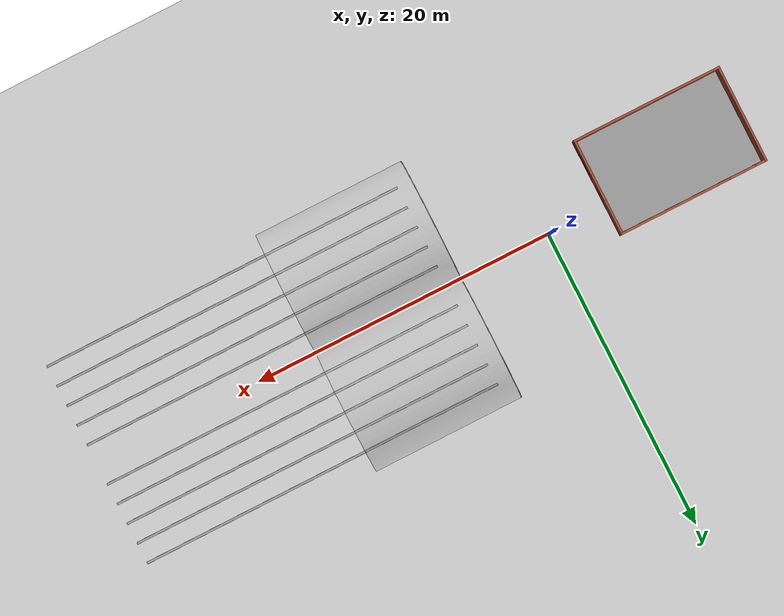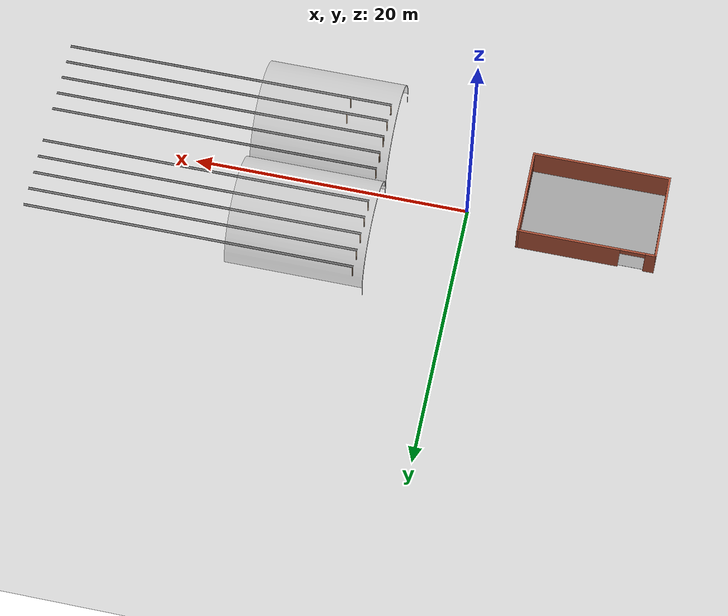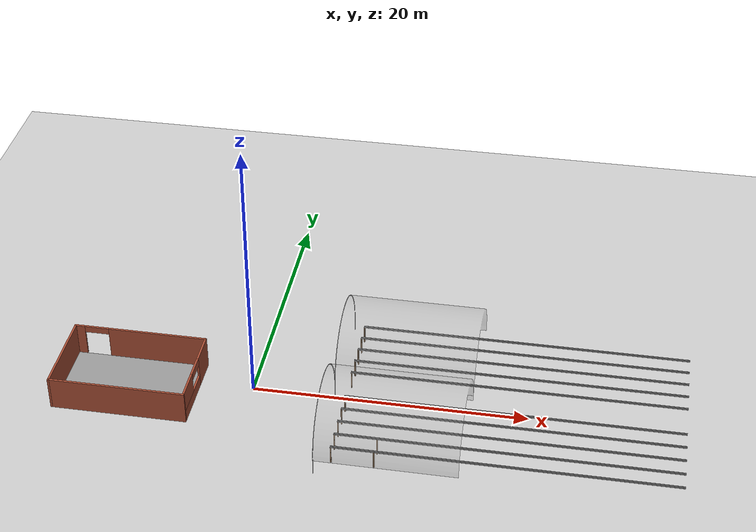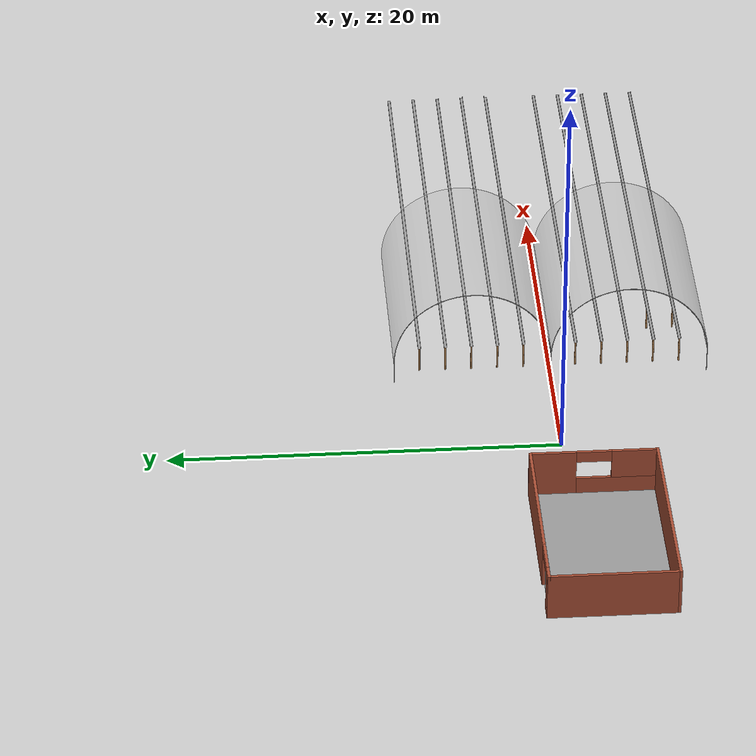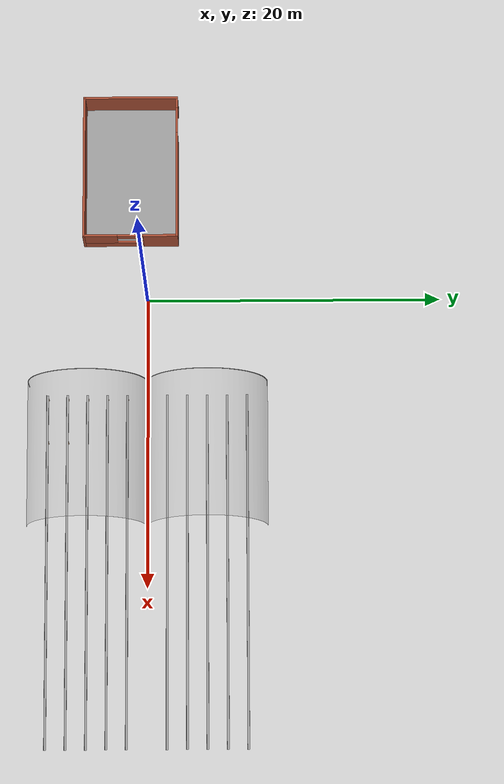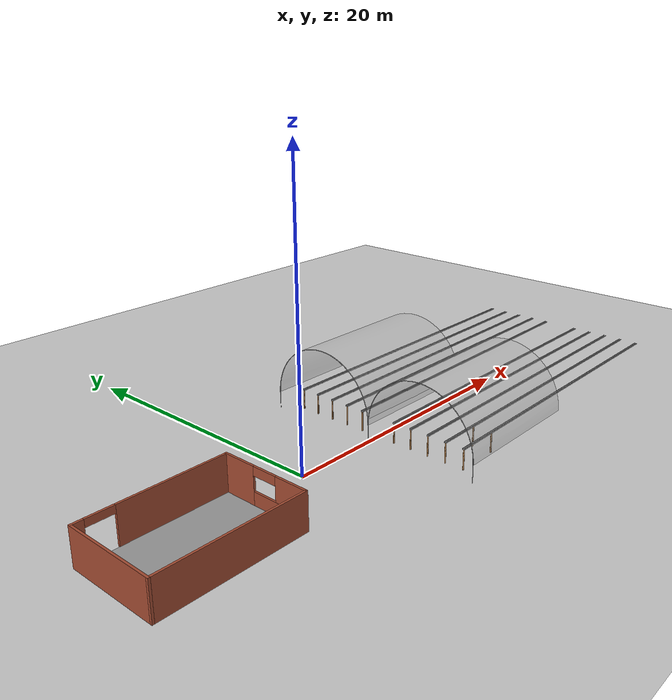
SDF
<sdf version="1.4">
 <world name="default">
  <model name="pole_0">
   <static>1</static>
   <pose>7.000 -6.750 0.691 0.0 0.0 0.0</pose>
   <link name="link">
    <collision name="collision">
     <geometry><cylinder><length>1.38235</length><radius>0.0456111</radius></cylinder></geometry>
    </collision>
    <visual name="visual">
     <geometry><cylinder><length>1.38235</length><radius>0.0456111</radius></cylinder></geometry>
     <material>
      <script><uri>file://media/materials/scripts/gazebo.material</uri><name>Gazebo/WoodFloor</name></script>
      <shader type="vertex"><normal_map>__default__</normal_map></shader>
      <emissive>0 0 0 1</emissive>
      <specular>0.01 0.01 0.01 1</specular>
      <ambient>0.9 0.9 0.9 1</ambient>
      <diffuse>0.09 0.09 0.09 1</diffuse>
     </material>
    </visual>
   </link>
  </model>
  <model name="pole_1">
   <static>1</static>
   <pose>7.000 -5.400 0.691 0.0 0.0 0.0</pose>
   <link name="link">
    <collision name="collision">
     <geometry><cylinder><length>1.38235</length><radius>0.0456111</radius></cylinder></geometry>
    </collision>
    <visual name="visual">
     <geometry><cylinder><length>1.38235</length><radius>0.0456111</radius></cylinder></geometry>
     <material>
      <script><uri>file://media/materials/scripts/gazebo.material</uri><name>Gazebo/WoodFloor</name></script>
      <shader type="vertex"><normal_map>__default__</normal_map></shader>
      <emissive>0 0 0 1</emissive>
      <specular>0.01 0.01 0.01 1</specular>
      <ambient>0.9 0.9 0.9 1</ambient>
      <diffuse>0.09 0.09 0.09 1</diffuse>
     </material>
    </visual>
   </link>
  </model>
  <model name="pole_2">
   <static>1</static>
   <pose>7.000 -4.050 0.691 0.0 0.0 0.0</pose>
   <link name="link">
    <collision name="collision">
     <geometry><cylinder><length>1.38235</length><radius>0.0456111</radius></cylinder></geometry>
    </collision>
    <visual name="visual">
     <geometry><cylinder><length>1.38235</length><radius>0.0456111</radius></cylinder></geometry>
     <material>
      <script><uri>file://media/materials/scripts/gazebo.material</uri><name>Gazebo/WoodFloor</name></script>
      <shader type="vertex"><normal_map>__default__</normal_map></shader>
      <emissive>0 0 0 1</emissive>
      <specular>0.01 0.01 0.01 1</specular>
      <ambient>0.9 0.9 0.9 1</ambient>
      <diffuse>0.09 0.09 0.09 1</diffuse>
     </material>
    </visual>
   </link>
  </model>
  <model name="pole_3">
   <static>1</static>
   <pose>7.000 -2.700 0.691 0.0 0.0 0.0</pose>
   <link name="link">
    <collision name="collision">
     <geometry><cylinder><length>1.38235</length><radius>0.0456111</radius></cylinder></geometry>
    </collision>
    <visual name="visual">
     <geometry><cylinder><length>1.38235</length><radius>0.0456111</radius></cylinder></geometry>
     <material>
      <script><uri>file://media/materials/scripts/gazebo.material</uri><name>Gazebo/WoodFloor</name></script>
      <shader type="vertex"><normal_map>__default__</normal_map></shader>
      <emissive>0 0 0 1</emissive>
      <specular>0.01 0.01 0.01 1</specular>
      <ambient>0.9 0.9 0.9 1</ambient>
      <diffuse>0.09 0.09 0.09 1</diffuse>
     </material>
    </visual>
   </link>
  </model>
  <model name="pole_4">
   <static>1</static>
   <pose>7.000 -1.350 0.691 0.0 0.0 0.0</pose>
   <link name="link">
    <collision name="collision">
     <geometry><cylinder><length>1.38235</length><radius>0.0456111</radius></cylinder></geometry>
    </collision>
    <visual name="visual">
     <geometry><cylinder><length>1.38235</length><radius>0.0456111</radius></cylinder></geometry>
     <material>
      <script><uri>file://media/materials/scripts/gazebo.material</uri><name>Gazebo/WoodFloor</name></script>
      <shader type="vertex"><normal_map>__default__</normal_map></shader>
      <emissive>0 0 0 1</emissive>
      <specular>0.01 0.01 0.01 1</specular>
      <ambient>0.9 0.9 0.9 1</ambient>
      <diffuse>0.09 0.09 0.09 1</diffuse>
     </material>
    </visual>
   </link>
  </model>
  <model name="pole_5">
   <static>1</static>
   <pose>10.000 -6.750 0.691 0.0 0.0 0.0</pose>
   <link name="link">
    <collision name="collision">
     <geometry><cylinder><length>1.38235</length><radius>0.0456111</radius></cylinder></geometry>
    </collision>
    <visual name="visual">
     <geometry><cylinder><length>1.38235</length><radius>0.0456111</radius></cylinder></geometry>
     <material>
      <script><uri>file://media/materials/scripts/gazebo.material</uri><name>Gazebo/WoodFloor</name></script>
      <shader type="vertex"><normal_map>__default__</normal_map></shader>
      <emissive>0 0 0 1</emissive>
      <specular>0.01 0.01 0.01 1</specular>
      <ambient>0.9 0.9 0.9 1</ambient>
      <diffuse>0.09 0.09 0.09 1</diffuse>
     </material>
    </visual>
   </link>
  </model>
  <model name="pole_6">
   <static>1</static>
   <pose>10.000 -5.400 0.691 0.0 0.0 0.0</pose>
   <link name="link">
    <collision name="collision">
     <geometry><cylinder><length>1.38235</length><radius>0.0456111</radius></cylinder></geometry>
    </collision>
    <visual name="visual">
     <geometry><cylinder><length>1.38235</length><radius>0.0456111</radius></cylinder></geometry>
     <material>
      <script><uri>file://media/materials/scripts/gazebo.material</uri><name>Gazebo/WoodFloor</name></script>
      <shader type="vertex"><normal_map>__default__</normal_map></shader>
      <emissive>0 0 0 1</emissive>
      <specular>0.01 0.01 0.01 1</specular>
      <ambient>0.9 0.9 0.9 1</ambient>
      <diffuse>0.09 0.09 0.09 1</diffuse>
     </material>
    </visual>
   </link>
  </model>
  <model name="tray_0">
   <static>1</static>
   <link name="link_0">
    <collision name="collision"><geometry><box><size>24.100 0.15 0.005</size></box></geometry></collision>
    <visual name="visual">
     <geometry><box><size>24.100 0.15 0.005</size></box></geometry>
     <material>
      <script><uri>file://media/materials/scripts/gazebo.material</uri><name>Gazebo/Grey</name></script>
      <emissive>0 0 0 1</emissive>
      <shader type="vertex"><normal_map>__default__</normal_map></shader>
      <specular>0.01 0.01 0.01 1</specular>
      <lighting>1</lighting>
      <ambient>0.7 0.7 0.7 1</ambient>
      <diffuse>0.3 0.3 0.3 1</diffuse>
     </material>
    </visual>
    <pose>19.000 -6.750 1.382 0.0 0.0 0.0</pose>
   </link>
  </model>
  <model name="tray_1">
   <static>1</static>
   <link name="link_0">
    <collision name="collision"><geometry><box><size>24.100 0.15 0.005</size></box></geometry></collision>
    <visual name="visual">
     <geometry><box><size>24.100 0.15 0.005</size></box></geometry>
     <material>
      <script><uri>file://media/materials/scripts/gazebo.material</uri><name>Gazebo/Grey</name></script>
      <emissive>0 0 0 1</emissive>
      <shader type="vertex"><normal_map>__default__</normal_map></shader>
      <specular>0.01 0.01 0.01 1</specular>
      <lighting>1</lighting>
      <ambient>0.7 0.7 0.7 1</ambient>
      <diffuse>0.3 0.3 0.3 1</diffuse>
     </material>
    </visual>
    <pose>19.000 -5.400 1.382 0.0 0.0 0.0</pose>
   </link>
  </model>
  <model name="tray_2">
   <static>1</static>
   <link name="link_0">
    <collision name="collision"><geometry><box><size>24.100 0.15 0.005</size></box></geometry></collision>
    <visual name="visual">
     <geometry><box><size>24.100 0.15 0.005</size></box></geometry>
     <material>
      <script><uri>file://media/materials/scripts/gazebo.material</uri><name>Gazebo/Grey</name></script>
      <emissive>0 0 0 1</emissive>
      <shader type="vertex"><normal_map>__default__</normal_map></shader>
      <specular>0.01 0.01 0.01 1</specular>
      <lighting>1</lighting>
      <ambient>0.7 0.7 0.7 1</ambient>
      <diffuse>0.3 0.3 0.3 1</diffuse>
     </material>
    </visual>
    <pose>19.000 -4.050 1.382 0.0 0.0 0.0</pose>
   </link>
  </model>
  <model name="tray_3">
   <static>1</static>
   <link name="link_0">
    <collision name="collision"><geometry><box><size>24.100 0.15 0.005</size></box></geometry></collision>
    <visual name="visual">
     <geometry><box><size>24.100 0.15 0.005</size></box></geometry>
     <material>
      <script><uri>file://media/materials/scripts/gazebo.material</uri><name>Gazebo/Grey</name></script>
      <emissive>0 0 0 1</emissive>
      <shader type="vertex"><normal_map>__default__</normal_map></shader>
      <specular>0.01 0.01 0.01 1</specular>
      <lighting>1</lighting>
      <ambient>0.7 0.7 0.7 1</ambient>
      <diffuse>0.3 0.3 0.3 1</diffuse>
     </material>
    </visual>
    <pose>19.000 -2.700 1.382 0.0 0.0 0.0</pose>
   </link>
  </model>
  <model name="tray_4">
   <static>1</static>
   <link name="link_0">
    <collision name="collision"><geometry><box><size>24.100 0.15 0.005</size></box></geometry></collision>
    <visual name="visual">
     <geometry><box><size>24.100 0.15 0.005</size></box></geometry>
     <material>
      <script><uri>file://media/materials/scripts/gazebo.material</uri><name>Gazebo/Grey</name></script>
      <emissive>0 0 0 1</emissive>
      <shader type="vertex"><normal_map>__default__</normal_map></shader>
      <specular>0.01 0.01 0.01 1</specular>
      <lighting>1</lighting>
      <ambient>0.7 0.7 0.7 1</ambient>
      <diffuse>0.3 0.3 0.3 1</diffuse>
     </material>
    </visual>
    <pose>19.000 -1.350 1.382 0.0 0.0 0.0</pose>
   </link>
  </model>
  <model name="tray_p2_0">
   <static>1</static>
   <link name="link_0">
    <collision name="collision"><geometry><box><size>24.10 0.085 0.005</size></box></geometry></collision>
    <visual name="visual">
     <geometry><box><size>24.10 0.085 0.005</size></box></geometry>
     <material>
      <script><uri>file://media/materials/scripts/gazebo.material</uri><name>Gazebo/Grey</name></script>
      <emissive>0 0 0 1</emissive>
      <shader type="vertex"><normal_map>__default__</normal_map></shader>
      <specular>0.01 0.01 0.01 1</specular>
      <lighting>1</lighting>
      <ambient>0.7 0.7 0.7 1</ambient>
      <diffuse>0.3 0.3 0.3 1</diffuse>
     </material>
    </visual>
    <pose>19.000 -6.825 1.424 1.5707 0.0 0.0</pose>
   </link>
  </model>
  <model name="tray_p2_1">
   <static>1</static>
   <link name="link_0">
    <collision name="collision"><geometry><box><size>24.10 0.085 0.005</size></box></geometry></collision>
    <visual name="visual">
     <geometry><box><size>24.10 0.085 0.005</size></box></geometry>
     <material>
      <script><uri>file://media/materials/scripts/gazebo.material</uri><name>Gazebo/Grey</name></script>
      <emissive>0 0 0 1</emissive>
      <shader type="vertex"><normal_map>__default__</normal_map></shader>
      <specular>0.01 0.01 0.01 1</specular>
      <lighting>1</lighting>
      <ambient>0.7 0.7 0.7 1</ambient>
      <diffuse>0.3 0.3 0.3 1</diffuse>
     </material>
    </visual>
    <pose>19.000 -5.475 1.424 1.5707 0.0 0.0</pose>
   </link>
  </model>
  <model name="tray_p2_2">
   <static>1</static>
   <link name="link_0">
    <collision name="collision"><geometry><box><size>24.10 0.085 0.005</size></box></geometry></collision>
    <visual name="visual">
     <geometry><box><size>24.10 0.085 0.005</size></box></geometry>
     <material>
      <script><uri>file://media/materials/scripts/gazebo.material</uri><name>Gazebo/Grey</name></script>
      <emissive>0 0 0 1</emissive>
      <shader type="vertex"><normal_map>__default__</normal_map></shader>
      <specular>0.01 0.01 0.01 1</specular>
      <lighting>1</lighting>
      <ambient>0.7 0.7 0.7 1</ambient>
      <diffuse>0.3 0.3 0.3 1</diffuse>
     </material>
    </visual>
    <pose>19.000 -4.125 1.424 1.5707 0.0 0.0</pose>
   </link>
  </model>
  <model name="tray_p2_3">
   <static>1</static>
   <link name="link_0">
    <collision name="collision"><geometry><box><size>24.10 0.085 0.005</size></box></geometry></collision>
    <visual name="visual">
     <geometry><box><size>24.10 0.085 0.005</size></box></geometry>
     <material>
      <script><uri>file://media/materials/scripts/gazebo.material</uri><name>Gazebo/Grey</name></script>
      <emissive>0 0 0 1</emissive>
      <shader type="vertex"><normal_map>__default__</normal_map></shader>
      <specular>0.01 0.01 0.01 1</specular>
      <lighting>1</lighting>
      <ambient>0.7 0.7 0.7 1</ambient>
      <diffuse>0.3 0.3 0.3 1</diffuse>
     </material>
    </visual>
    <pose>19.000 -2.775 1.424 1.5707 0.0 0.0</pose>
   </link>
  </model>
  <model name="tray_p2_4">
   <static>1</static>
   <link name="link_0">
    <collision name="collision"><geometry><box><size>24.10 0.085 0.005</size></box></geometry></collision>
    <visual name="visual">
     <geometry><box><size>24.10 0.085 0.005</size></box></geometry>
     <material>
      <script><uri>file://media/materials/scripts/gazebo.material</uri><name>Gazebo/Grey</name></script>
      <emissive>0 0 0 1</emissive>
      <shader type="vertex"><normal_map>__default__</normal_map></shader>
      <specular>0.01 0.01 0.01 1</specular>
      <lighting>1</lighting>
      <ambient>0.7 0.7 0.7 1</ambient>
      <diffuse>0.3 0.3 0.3 1</diffuse>
     </material>
    </visual>
    <pose>19.000 -1.425 1.424 1.5707 0.0 0.0</pose>
   </link>
  </model>
  <model name="tray_p2_5">
   <static>1</static>
   <link name="link_0">
    <collision name="collision"><geometry><box><size>24.10 0.085 0.005</size></box></geometry></collision>
    <visual name="visual">
     <geometry><box><size>24.10 0.085 0.005</size></box></geometry>
     <material>
      <script><uri>file://media/materials/scripts/gazebo.material</uri><name>Gazebo/Grey</name></script>
      <emissive>0 0 0 1</emissive>
      <shader type="vertex"><normal_map>__default__</normal_map></shader>
      <specular>0.01 0.01 0.01 1</specular>
      <lighting>1</lighting>
      <ambient>0.7 0.7 0.7 1</ambient>
      <diffuse>0.3 0.3 0.3 1</diffuse>
     </material>
    </visual>
    <pose>19.000 -6.675 1.424 1.5707 0.0 0.0</pose>
   </link>
  </model>
  <model name="tray_p2_6">
   <static>1</static>
   <link name="link_0">
    <collision name="collision"><geometry><box><size>24.10 0.085 0.005</size></box></geometry></collision>
    <visual name="visual">
     <geometry><box><size>24.10 0.085 0.005</size></box></geometry>
     <material>
      <script><uri>file://media/materials/scripts/gazebo.material</uri><name>Gazebo/Grey</name></script>
      <emissive>0 0 0 1</emissive>
      <shader type="vertex"><normal_map>__default__</normal_map></shader>
      <specular>0.01 0.01 0.01 1</specular>
      <lighting>1</lighting>
      <ambient>0.7 0.7 0.7 1</ambient>
      <diffuse>0.3 0.3 0.3 1</diffuse>
     </material>
    </visual>
    <pose>19.000 -5.325 1.424 1.5707 0.0 0.0</pose>
   </link>
  </model>
  <model name="tray_p2_7">
   <static>1</static>
   <link name="link_0">
    <collision name="collision"><geometry><box><size>24.10 0.085 0.005</size></box></geometry></collision>
    <visual name="visual">
     <geometry><box><size>24.10 0.085 0.005</size></box></geometry>
     <material>
      <script><uri>file://media/materials/scripts/gazebo.material</uri><name>Gazebo/Grey</name></script>
      <emissive>0 0 0 1</emissive>
      <shader type="vertex"><normal_map>__default__</normal_map></shader>
      <specular>0.01 0.01 0.01 1</specular>
      <lighting>1</lighting>
      <ambient>0.7 0.7 0.7 1</ambient>
      <diffuse>0.3 0.3 0.3 1</diffuse>
     </material>
    </visual>
    <pose>19.000 -3.975 1.424 1.5707 0.0 0.0</pose>
   </link>
  </model>
  <model name="tray_p2_8">
   <static>1</static>
   <link name="link_0">
    <collision name="collision"><geometry><box><size>24.10 0.085 0.005</size></box></geometry></collision>
    <visual name="visual">
     <geometry><box><size>24.10 0.085 0.005</size></box></geometry>
     <material>
      <script><uri>file://media/materials/scripts/gazebo.material</uri><name>Gazebo/Grey</name></script>
      <emissive>0 0 0 1</emissive>
      <shader type="vertex"><normal_map>__default__</normal_map></shader>
      <specular>0.01 0.01 0.01 1</specular>
      <lighting>1</lighting>
      <ambient>0.7 0.7 0.7 1</ambient>
      <diffuse>0.3 0.3 0.3 1</diffuse>
     </material>
    </visual>
    <pose>19.000 -2.625 1.424 1.5707 0.0 0.0</pose>
   </link>
  </model>
  <model name="tray_p2_9">
   <static>1</static>
   <link name="link_0">
    <collision name="collision"><geometry><box><size>24.10 0.085 0.005</size></box></geometry></collision>
    <visual name="visual">
     <geometry><box><size>24.10 0.085 0.005</size></box></geometry>
     <material>
      <script><uri>file://media/materials/scripts/gazebo.material</uri><name>Gazebo/Grey</name></script>
      <emissive>0 0 0 1</emissive>
      <shader type="vertex"><normal_map>__default__</normal_map></shader>
      <specular>0.01 0.01 0.01 1</specular>
      <lighting>1</lighting>
      <ambient>0.7 0.7 0.7 1</ambient>
      <diffuse>0.3 0.3 0.3 1</diffuse>
     </material>
    </visual>
    <pose>19.000 -1.275 1.424 1.5707 0.0 0.0</pose>
   </link>
  </model>
  <model name="dummy_arch_0">
   <static>1</static>
   <pose>6.000 -8.100 0.0 1.5707 0.0 1.5707</pose>
   <link name="link">
    <collision name="collision">
     <geometry><mesh><uri>model://dummy_arch/dummy_arch.stl</uri></mesh></geometry>
    </collision>
    <visual name="visual">
     <geometry><mesh><uri>model://dummy_arch/dummy_arch.stl</uri></mesh></geometry>
     <material>
      <script><uri>file://media/materials/scripts/gazebo.material</uri><name>Gazebo/Grey</name></script>
     </material>
    </visual>
   </link>
  </model>
  <model name="canopy10m_0">
   <static>1</static>
   <pose>6.000 -4.033 0.0 1.5707 0.0 1.5707</pose>
   <link name="link">
    <collision name="collision">
     <geometry><mesh><uri>model://canopy10m/Canopy10m.stl</uri></mesh></geometry>
    </collision>
    <visual name="visual">
     <geometry><mesh><uri>model://canopy10m/Canopy10m.stl</uri></mesh></geometry>
     <transparency>0.65</transparency>
    </visual>
   </link>
  </model>
  <model name="pole_45">
   <static>1</static>
   <pose>7.000 1.350 0.691 0.0 0.0 0.0</pose>
   <link name="link">
    <collision name="collision">
     <geometry><cylinder><length>1.38235</length><radius>0.0456111</radius></cylinder></geometry>
    </collision>
    <visual name="visual">
     <geometry><cylinder><length>1.38235</length><radius>0.0456111</radius></cylinder></geometry>
     <material>
      <script><uri>file://media/materials/scripts/gazebo.material</uri><name>Gazebo/WoodFloor</name></script>
      <shader type="vertex"><normal_map>__default__</normal_map></shader>
      <emissive>0 0 0 1</emissive>
      <specular>0.01 0.01 0.01 1</specular>
      <ambient>0.9 0.9 0.9 1</ambient>
      <diffuse>0.09 0.09 0.09 1</diffuse>
     </material>
    </visual>
   </link>
  </model>
  <model name="pole_46">
   <static>1</static>
   <pose>7.000 2.700 0.691 0.0 0.0 0.0</pose>
   <link name="link">
    <collision name="collision">
     <geometry><cylinder><length>1.38235</length><radius>0.0456111</radius></cylinder></geometry>
    </collision>
    <visual name="visual">
     <geometry><cylinder><length>1.38235</length><radius>0.0456111</radius></cylinder></geometry>
     <material>
      <script><uri>file://media/materials/scripts/gazebo.material</uri><name>Gazebo/WoodFloor</name></script>
      <shader type="vertex"><normal_map>__default__</normal_map></shader>
      <emissive>0 0 0 1</emissive>
      <specular>0.01 0.01 0.01 1</specular>
      <ambient>0.9 0.9 0.9 1</ambient>
      <diffuse>0.09 0.09 0.09 1</diffuse>
     </material>
    </visual>
   </link>
  </model>
  <model name="pole_47">
   <static>1</static>
   <pose>7.000 4.050 0.691 0.0 0.0 0.0</pose>
   <link name="link">
    <collision name="collision">
     <geometry><cylinder><length>1.38235</length><radius>0.0456111</radius></cylinder></geometry>
    </collision>
    <visual name="visual">
     <geometry><cylinder><length>1.38235</length><radius>0.0456111</radius></cylinder></geometry>
     <material>
      <script><uri>file://media/materials/scripts/gazebo.material</uri><name>Gazebo/WoodFloor</name></script>
      <shader type="vertex"><normal_map>__default__</normal_map></shader>
      <emissive>0 0 0 1</emissive>
      <specular>0.01 0.01 0.01 1</specular>
      <ambient>0.9 0.9 0.9 1</ambient>
      <diffuse>0.09 0.09 0.09 1</diffuse>
     </material>
    </visual>
   </link>
  </model>
  <model name="pole_48">
   <static>1</static>
   <pose>7.000 5.400 0.691 0.0 0.0 0.0</pose>
   <link name="link">
    <collision name="collision">
     <geometry><cylinder><length>1.38235</length><radius>0.0456111</radius></cylinder></geometry>
    </collision>
    <visual name="visual">
     <geometry><cylinder><length>1.38235</length><radius>0.0456111</radius></cylinder></geometry>
     <material>
      <script><uri>file://media/materials/scripts/gazebo.material</uri><name>Gazebo/WoodFloor</name></script>
      <shader type="vertex"><normal_map>__default__</normal_map></shader>
      <emissive>0 0 0 1</emissive>
      <specular>0.01 0.01 0.01 1</specular>
      <ambient>0.9 0.9 0.9 1</ambient>
      <diffuse>0.09 0.09 0.09 1</diffuse>
     </material>
    </visual>
   </link>
  </model>
  <model name="pole_49">
   <static>1</static>
   <pose>7.000 6.750 0.691 0.0 0.0 0.0</pose>
   <link name="link">
    <collision name="collision">
     <geometry><cylinder><length>1.38235</length><radius>0.0456111</radius></cylinder></geometry>
    </collision>
    <visual name="visual">
     <geometry><cylinder><length>1.38235</length><radius>0.0456111</radius></cylinder></geometry>
     <material>
      <script><uri>file://media/materials/scripts/gazebo.material</uri><name>Gazebo/WoodFloor</name></script>
      <shader type="vertex"><normal_map>__default__</normal_map></shader>
      <emissive>0 0 0 1</emissive>
      <specular>0.01 0.01 0.01 1</specular>
      <ambient>0.9 0.9 0.9 1</ambient>
      <diffuse>0.09 0.09 0.09 1</diffuse>
     </material>
    </visual>
   </link>
  </model>
  <model name="tray_5">
   <static>1</static>
   <link name="link_0">
    <collision name="collision"><geometry><box><size>24.100 0.15 0.005</size></box></geometry></collision>
    <visual name="visual">
     <geometry><box><size>24.100 0.15 0.005</size></box></geometry>
     <material>
      <script><uri>file://media/materials/scripts/gazebo.material</uri><name>Gazebo/Grey</name></script>
      <emissive>0 0 0 1</emissive>
      <shader type="vertex"><normal_map>__default__</normal_map></shader>
      <specular>0.01 0.01 0.01 1</specular>
      <lighting>1</lighting>
      <ambient>0.7 0.7 0.7 1</ambient>
      <diffuse>0.3 0.3 0.3 1</diffuse>
     </material>
    </visual>
    <pose>19.000 1.350 1.382 0.0 0.0 0.0</pose>
   </link>
  </model>
  <model name="tray_6">
   <static>1</static>
   <link name="link_0">
    <collision name="collision"><geometry><box><size>24.100 0.15 0.005</size></box></geometry></collision>
    <visual name="visual">
     <geometry><box><size>24.100 0.15 0.005</size></box></geometry>
     <material>
      <script><uri>file://media/materials/scripts/gazebo.material</uri><name>Gazebo/Grey</name></script>
      <emissive>0 0 0 1</emissive>
      <shader type="vertex"><normal_map>__default__</normal_map></shader>
      <specular>0.01 0.01 0.01 1</specular>
      <lighting>1</lighting>
      <ambient>0.7 0.7 0.7 1</ambient>
      <diffuse>0.3 0.3 0.3 1</diffuse>
     </material>
    </visual>
    <pose>19.000 2.700 1.382 0.0 0.0 0.0</pose>
   </link>
  </model>
  <model name="tray_7">
   <static>1</static>
   <link name="link_0">
    <collision name="collision"><geometry><box><size>24.100 0.15 0.005</size></box></geometry></collision>
    <visual name="visual">
     <geometry><box><size>24.100 0.15 0.005</size></box></geometry>
     <material>
      <script><uri>file://media/materials/scripts/gazebo.material</uri><name>Gazebo/Grey</name></script>
      <emissive>0 0 0 1</emissive>
      <shader type="vertex"><normal_map>__default__</normal_map></shader>
      <specular>0.01 0.01 0.01 1</specular>
      <lighting>1</lighting>
      <ambient>0.7 0.7 0.7 1</ambient>
      <diffuse>0.3 0.3 0.3 1</diffuse>
     </material>
    </visual>
    <pose>19.000 4.050 1.382 0.0 0.0 0.0</pose>
   </link>
  </model>
  <model name="tray_8">
   <static>1</static>
   <link name="link_0">
    <collision name="collision"><geometry><box><size>24.100 0.15 0.005</size></box></geometry></collision>
    <visual name="visual">
     <geometry><box><size>24.100 0.15 0.005</size></box></geometry>
     <material>
      <script><uri>file://media/materials/scripts/gazebo.material</uri><name>Gazebo/Grey</name></script>
      <emissive>0 0 0 1</emissive>
      <shader type="vertex"><normal_map>__default__</normal_map></shader>
      <specular>0.01 0.01 0.01 1</specular>
      <lighting>1</lighting>
      <ambient>0.7 0.7 0.7 1</ambient>
      <diffuse>0.3 0.3 0.3 1</diffuse>
     </material>
    </visual>
    <pose>19.000 5.400 1.382 0.0 0.0 0.0</pose>
   </link>
  </model>
  <model name="tray_9">
   <static>1</static>
   <link name="link_0">
    <collision name="collision"><geometry><box><size>24.100 0.15 0.005</size></box></geometry></collision>
    <visual name="visual">
     <geometry><box><size>24.100 0.15 0.005</size></box></geometry>
     <material>
      <script><uri>file://media/materials/scripts/gazebo.material</uri><name>Gazebo/Grey</name></script>
      <emissive>0 0 0 1</emissive>
      <shader type="vertex"><normal_map>__default__</normal_map></shader>
      <specular>0.01 0.01 0.01 1</specular>
      <lighting>1</lighting>
      <ambient>0.7 0.7 0.7 1</ambient>
      <diffuse>0.3 0.3 0.3 1</diffuse>
     </material>
    </visual>
    <pose>19.000 6.750 1.382 0.0 0.0 0.0</pose>
   </link>
  </model>
  <model name="tray_p2_10">
   <static>1</static>
   <link name="link_0">
    <collision name="collision"><geometry><box><size>24.10 0.085 0.005</size></box></geometry></collision>
    <visual name="visual">
     <geometry><box><size>24.10 0.085 0.005</size></box></geometry>
     <material>
      <script><uri>file://media/materials/scripts/gazebo.material</uri><name>Gazebo/Grey</name></script>
      <emissive>0 0 0 1</emissive>
      <shader type="vertex"><normal_map>__default__</normal_map></shader>
      <specular>0.01 0.01 0.01 1</specular>
      <lighting>1</lighting>
      <ambient>0.7 0.7 0.7 1</ambient>
      <diffuse>0.3 0.3 0.3 1</diffuse>
     </material>
    </visual>
    <pose>19.000 1.275 1.424 1.5707 0.0 0.0</pose>
   </link>
  </model>
  <model name="tray_p2_11">
   <static>1</static>
   <link name="link_0">
    <collision name="collision"><geometry><box><size>24.10 0.085 0.005</size></box></geometry></collision>
    <visual name="visual">
     <geometry><box><size>24.10 0.085 0.005</size></box></geometry>
     <material>
      <script><uri>file://media/materials/scripts/gazebo.material</uri><name>Gazebo/Grey</name></script>
      <emissive>0 0 0 1</emissive>
      <shader type="vertex"><normal_map>__default__</normal_map></shader>
      <specular>0.01 0.01 0.01 1</specular>
      <lighting>1</lighting>
      <ambient>0.7 0.7 0.7 1</ambient>
      <diffuse>0.3 0.3 0.3 1</diffuse>
     </material>
    </visual>
    <pose>19.000 2.625 1.424 1.5707 0.0 0.0</pose>
   </link>
  </model>
  <model name="tray_p2_12">
   <static>1</static>
   <link name="link_0">
    <collision name="collision"><geometry><box><size>24.10 0.085 0.005</size></box></geometry></collision>
    <visual name="visual">
     <geometry><box><size>24.10 0.085 0.005</size></box></geometry>
     <material>
      <script><uri>file://media/materials/scripts/gazebo.material</uri><name>Gazebo/Grey</name></script>
      <emissive>0 0 0 1</emissive>
      <shader type="vertex"><normal_map>__default__</normal_map></shader>
      <specular>0.01 0.01 0.01 1</specular>
      <lighting>1</lighting>
      <ambient>0.7 0.7 0.7 1</ambient>
      <diffuse>0.3 0.3 0.3 1</diffuse>
     </material>
    </visual>
    <pose>19.000 3.975 1.424 1.5707 0.0 0.0</pose>
   </link>
  </model>
  <model name="tray_p2_13">
   <static>1</static>
   <link name="link_0">
    <collision name="collision"><geometry><box><size>24.10 0.085 0.005</size></box></geometry></collision>
    <visual name="visual">
     <geometry><box><size>24.10 0.085 0.005</size></box></geometry>
     <material>
      <script><uri>file://media/materials/scripts/gazebo.material</uri><name>Gazebo/Grey</name></script>
      <emissive>0 0 0 1</emissive>
      <shader type="vertex"><normal_map>__default__</normal_map></shader>
      <specular>0.01 0.01 0.01 1</specular>
      <lighting>1</lighting>
      <ambient>0.7 0.7 0.7 1</ambient>
      <diffuse>0.3 0.3 0.3 1</diffuse>
     </material>
    </visual>
    <pose>19.000 5.325 1.424 1.5707 0.0 0.0</pose>
   </link>
  </model>
  <model name="tray_p2_14">
   <static>1</static>
   <link name="link_0">
    <collision name="collision"><geometry><box><size>24.10 0.085 0.005</size></box></geometry></collision>
    <visual name="visual">
     <geometry><box><size>24.10 0.085 0.005</size></box></geometry>
     <material>
      <script><uri>file://media/materials/scripts/gazebo.material</uri><name>Gazebo/Grey</name></script>
      <emissive>0 0 0 1</emissive>
      <shader type="vertex"><normal_map>__default__</normal_map></shader>
      <specular>0.01 0.01 0.01 1</specular>
      <lighting>1</lighting>
      <ambient>0.7 0.7 0.7 1</ambient>
      <diffuse>0.3 0.3 0.3 1</diffuse>
     </material>
    </visual>
    <pose>19.000 6.675 1.424 1.5707 0.0 0.0</pose>
   </link>
  </model>
  <model name="tray_p2_15">
   <static>1</static>
   <link name="link_0">
    <collision name="collision"><geometry><box><size>24.10 0.085 0.005</size></box></geometry></collision>
    <visual name="visual">
     <geometry><box><size>24.10 0.085 0.005</size></box></geometry>
     <material>
      <script><uri>file://media/materials/scripts/gazebo.material</uri><name>Gazebo/Grey</name></script>
      <emissive>0 0 0 1</emissive>
      <shader type="vertex"><normal_map>__default__</normal_map></shader>
      <specular>0.01 0.01 0.01 1</specular>
      <lighting>1</lighting>
      <ambient>0.7 0.7 0.7 1</ambient>
      <diffuse>0.3 0.3 0.3 1</diffuse>
     </material>
    </visual>
    <pose>19.000 1.425 1.424 1.5707 0.0 0.0</pose>
   </link>
  </model>
  <model name="tray_p2_16">
   <static>1</static>
   <link name="link_0">
    <collision name="collision"><geometry><box><size>24.10 0.085 0.005</size></box></geometry></collision>
    <visual name="visual">
     <geometry><box><size>24.10 0.085 0.005</size></box></geometry>
     <material>
      <script><uri>file://media/materials/scripts/gazebo.material</uri><name>Gazebo/Grey</name></script>
      <emissive>0 0 0 1</emissive>
      <shader type="vertex"><normal_map>__default__</normal_map></shader>
      <specular>0.01 0.01 0.01 1</specular>
      <lighting>1</lighting>
      <ambient>0.7 0.7 0.7 1</ambient>
      <diffuse>0.3 0.3 0.3 1</diffuse>
     </material>
    </visual>
    <pose>19.000 2.775 1.424 1.5707 0.0 0.0</pose>
   </link>
  </model>
  <model name="tray_p2_17">
   <static>1</static>
   <link name="link_0">
    <collision name="collision"><geometry><box><size>24.10 0.085 0.005</size></box></geometry></collision>
    <visual name="visual">
     <geometry><box><size>24.10 0.085 0.005</size></box></geometry>
     <material>
      <script><uri>file://media/materials/scripts/gazebo.material</uri><name>Gazebo/Grey</name></script>
      <emissive>0 0 0 1</emissive>
      <shader type="vertex"><normal_map>__default__</normal_map></shader>
      <specular>0.01 0.01 0.01 1</specular>
      <lighting>1</lighting>
      <ambient>0.7 0.7 0.7 1</ambient>
      <diffuse>0.3 0.3 0.3 1</diffuse>
     </material>
    </visual>
    <pose>19.000 4.125 1.424 1.5707 0.0 0.0</pose>
   </link>
  </model>
  <model name="tray_p2_18">
   <static>1</static>
   <link name="link_0">
    <collision name="collision"><geometry><box><size>24.10 0.085 0.005</size></box></geometry></collision>
    <visual name="visual">
     <geometry><box><size>24.10 0.085 0.005</size></box></geometry>
     <material>
      <script><uri>file://media/materials/scripts/gazebo.material</uri><name>Gazebo/Grey</name></script>
      <emissive>0 0 0 1</emissive>
      <shader type="vertex"><normal_map>__default__</normal_map></shader>
      <specular>0.01 0.01 0.01 1</specular>
      <lighting>1</lighting>
      <ambient>0.7 0.7 0.7 1</ambient>
      <diffuse>0.3 0.3 0.3 1</diffuse>
     </material>
    </visual>
    <pose>19.000 5.475 1.424 1.5707 0.0 0.0</pose>
   </link>
  </model>
  <model name="tray_p2_19">
   <static>1</static>
   <link name="link_0">
    <collision name="collision"><geometry><box><size>24.10 0.085 0.005</size></box></geometry></collision>
    <visual name="visual">
     <geometry><box><size>24.10 0.085 0.005</size></box></geometry>
     <material>
      <script><uri>file://media/materials/scripts/gazebo.material</uri><name>Gazebo/Grey</name></script>
      <emissive>0 0 0 1</emissive>
      <shader type="vertex"><normal_map>__default__</normal_map></shader>
      <specular>0.01 0.01 0.01 1</specular>
      <lighting>1</lighting>
      <ambient>0.7 0.7 0.7 1</ambient>
      <diffuse>0.3 0.3 0.3 1</diffuse>
     </material>
    </visual>
    <pose>19.000 6.825 1.424 1.5707 0.0 0.0</pose>
   </link>
  </model>
  <model name="dummy_arch_7">
   <static>1</static>
   <pose>6.000 0.000 0.0 1.5707 0.0 1.5707</pose>
   <link name="link">
    <collision name="collision">
     <geometry><mesh><uri>model://dummy_arch/dummy_arch.stl</uri></mesh></geometry>
    </collision>
    <visual name="visual">
     <geometry><mesh><uri>model://dummy_arch/dummy_arch.stl</uri></mesh></geometry>
     <material>
      <script><uri>file://media/materials/scripts/gazebo.material</uri><name>Gazebo/Grey</name></script>
     </material>
    </visual>
   </link>
  </model>
  <model name="canopy10m_2">
   <static>1</static>
   <pose>6.000 4.067 0.0 1.5707 0.0 1.5707</pose>
   <link name="link">
    <collision name="collision">
     <geometry><mesh><uri>model://canopy10m/Canopy10m.stl</uri></mesh></geometry>
    </collision>
    <visual name="visual">
     <geometry><mesh><uri>model://canopy10m/Canopy10m.stl</uri></mesh></geometry>
     <transparency>0.65</transparency>
    </visual>
   </link>
  </model>
  <model name="food_handling_shed_0">
   <static>1</static>
   <pose>-8.900 -1.160 0.0 0.0 0.0 0.0</pose>
   <link name="Wall_11">
    <collision name="Wall_11_Collision_0">
     <geometry><box><size>0.792497 0.15 2.5</size></box></geometry>
     <pose>-4.60375 0 1.25 0 -0 0</pose>
    </collision>
    <collision name="Wall_11_Collision_1">
     <geometry><box><size>7.4075 0.15 2.5</size></box></geometry>
     <pose>1.29625 0 1.25 0 -0 0</pose>
    </collision>
    <collision name="Wall_11_Collision_2">
     <geometry><box><size>1.8 0.15 0.5</size></box></geometry>
     <pose>-3.3075 0 2.25 0 -0 0</pose>
    </collision>
    <visual name="Wall_11_Visual_0">
     <geometry><box><size>0.792497 0.15 2.5</size></box></geometry>
     <meta><layer>0</layer></meta>
     <material>
      <script><uri>file://media/materials/scripts/gazebo.material</uri><name>Gazebo/Bricks</name></script>
      <ambient>1 1 1 1</ambient>
     </material>
     <pose>-4.60375 0 1.25 0 -0 0</pose>
    </visual>
    <visual name="Wall_11_Visual_1">
     <geometry><box><size>7.4075 0.15 2.5</size></box></geometry>
     <meta><layer>0</layer></meta>
     <material>
      <script><uri>file://media/materials/scripts/gazebo.material</uri><name>Gazebo/Bricks</name></script>
      <ambient>1 1 1 1</ambient>
     </material>
     <pose>1.29625 0 1.25 0 -0 0</pose>
    </visual>
    <visual name="Wall_11_Visual_2">
     <geometry><box><size>1.8 0.15 0.5</size></box></geometry>
     <meta><layer>0</layer></meta>
     <material>
      <script><uri>file://media/materials/scripts/gazebo.material</uri><name>Gazebo/Bricks</name></script>
      <ambient>1 1 1 1</ambient>
     </material>
     <pose>-3.3075 0 2.25 0 -0 0</pose>
    </visual>
    <pose>-0 3.175 0 0 -0 0</pose>
   </link>
   <link name="Wall_12">
    <collision name="Wall_12_Collision_0">
     <geometry><box><size>2.37863 0.15 2.5</size></box></geometry>
     <pose>-2.06069 0 1.25 0 -0 0</pose>
    </collision>
    <collision name="Wall_12_Collision_1">
     <geometry><box><size>4.12137 0.15 0.9</size></box></geometry>
     <pose>1.18931 0 0.45 0 -0 0</pose>
    </collision>
    <collision name="Wall_12_Collision_2">
     <geometry><box><size>2.37137 0.15 1.6</size></box></geometry>
     <pose>2.06431 0 1.7 0 -0 0</pose>
    </collision>
    <collision name="Wall_12_Collision_3">
     <geometry><box><size>1.75 0.15 0.6</size></box></geometry>
     <pose>0.003629 0 2.2 0 -0 0</pose>
    </collision>
    <visual name="Wall_12_Visual_0">
     <geometry><box><size>2.37863 0.15 2.5</size></box></geometry>
     <meta><layer>0</layer></meta>
     <material>
      <script><uri>file://media/materials/scripts/gazebo.material</uri><name>Gazebo/Bricks</name></script>
      <ambient>1 1 1 1</ambient>
     </material>
     <pose>-2.06069 0 1.25 0 -0 0</pose>
    </visual>
    <visual name="Wall_12_Visual_1">
     <geometry><box><size>4.12137 0.15 0.9</size></box></geometry>
     <meta><layer>0</layer></meta>
     <material>
      <script><uri>file://media/materials/scripts/gazebo.material</uri><name>Gazebo/Bricks</name></script>
      <ambient>1 1 1 1</ambient>
     </material>
     <pose>1.18931 0 0.45 0 -0 0</pose>
    </visual>
    <visual name="Wall_12_Visual_2">
     <geometry><box><size>2.37137 0.15 1.6</size></box></geometry>
     <meta><layer>0</layer></meta>
     <material>
      <script><uri>file://media/materials/scripts/gazebo.material</uri><name>Gazebo/Bricks</name></script>
      <ambient>1 1 1 1</ambient>
     </material>
     <pose>2.06431 0 1.7 0 -0 0</pose>
    </visual>
    <visual name="Wall_12_Visual_3">
     <geometry><box><size>1.75 0.15 0.6</size></box></geometry>
     <meta><layer>0</layer></meta>
     <material>
      <script><uri>file://media/materials/scripts/gazebo.material</uri><name>Gazebo/Bricks</name></script>
      <ambient>1 1 1 1</ambient>
     </material>
     <pose>0.003629 0 2.2 0 -0 0</pose>
    </visual>
    <pose>4.925 -0 0 0 -0 -1.5708</pose>
   </link>
   <link name="Wall_13">
    <collision name="Wall_13_Collision">
     <geometry><box><size>10 0.15 2.5</size></box></geometry>
     <pose>0 0 1.25 0 -0 0</pose>
    </collision>
    <visual name="Wall_13_Visual">
     <geometry><box><size>10 0.15 2.5</size></box></geometry>
     <meta><layer>0</layer></meta>
     <material>
      <script><uri>file://media/materials/scripts/gazebo.material</uri><name>Gazebo/Bricks</name></script>
      <ambient>1 1 1 1</ambient>
     </material>
     <pose>0 0 1.25 0 -0 0</pose>
    </visual>
    <pose>-0 -3.175 0 0 -0 3.14159</pose>
   </link>
   <link name="Wall_14">
    <collision name="Wall_14_Collision">
     <geometry><box><size>6.5 0.15 2.5</size></box></geometry>
     <pose>0 0 1.25 0 -0 0</pose>
    </collision>
    <visual name="Wall_14_Visual">
     <geometry><box><size>6.5 0.15 2.5</size></box></geometry>
     <meta><layer>0</layer></meta>
     <material>
      <script><uri>file://media/materials/scripts/gazebo.material</uri><name>Gazebo/Bricks</name></script>
      <ambient>1 1 1 1</ambient>
     </material>
     <pose>0 0 1.25 0 -0 0</pose>
    </visual>
    <pose>-4.925 -0 0 0 -0 1.5708</pose>
   </link>
  </model>
  <model name="fhs_floor_0">
   <static>1</static>
   <link name="link_0">
    <collision name="collision"><geometry><box><size>9.75 6.25 0.01</size></box></geometry></collision>
    <visual name="visual">
     <geometry><box><size>9.75 6.25 0.01</size></box></geometry>
     <material>
      <script><uri>file://media/materials/scripts/gazebo.material</uri><name>Gazebo/Grey</name></script>
      <emissive>0 0 0 1</emissive>
      <shader type="vertex"><normal_map>__default__</normal_map></shader>
      <specular>0.01 0.01 0.01 1</specular>
      <lighting>1</lighting>
      <ambient>0.3 0.3 0.3 1</ambient>
      <diffuse>0.7 0.7 0.7 1</diffuse>
     </material>
    </visual>
    <pose>-8.900 -1.160 0.01 0.0 0.0 0.0</pose>
   </link>
  </model>
  <include><uri>model://sun</uri></include>
  <include><uri>model://grass_ground_plane</uri></include>
 </world>
</sdf>
